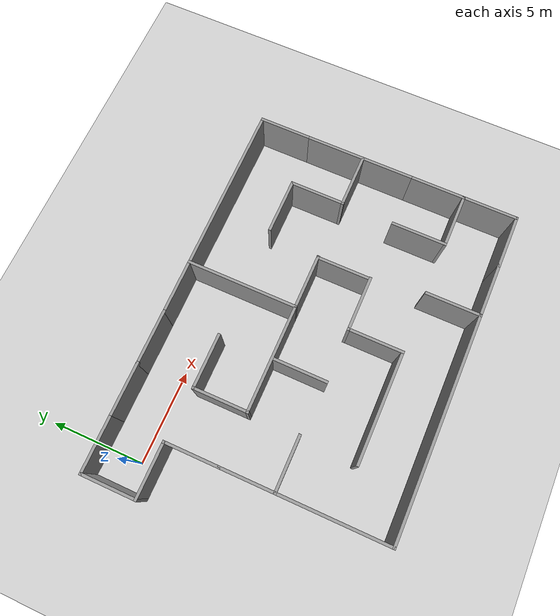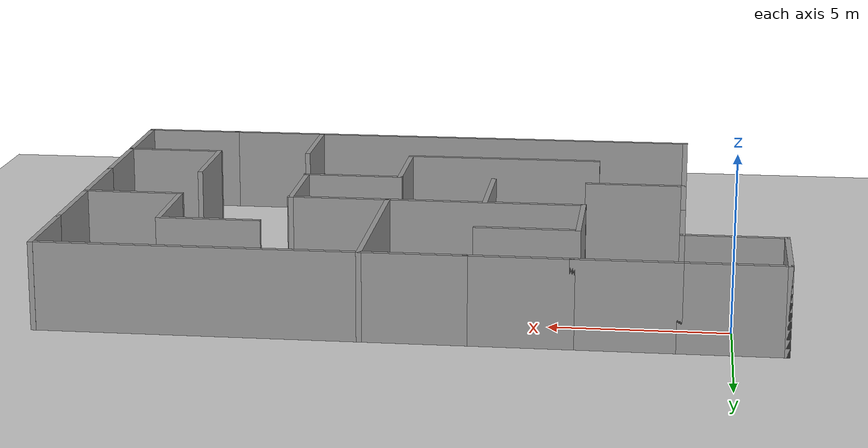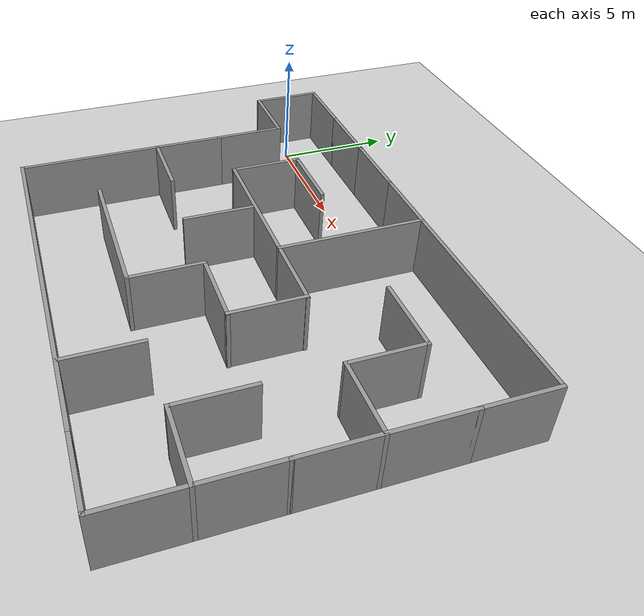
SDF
<sdf version="1.7">
 <world name="default">
  <light name="sun" type="directional">
   <pose>0 0 10 0 -0 0</pose>
   <diffuse>0.8 0.8 0.8 1</diffuse>
   <specular>0.2 0.2 0.2 1</specular>
   <attenuation>
    <range>1000</range>
    <constant>0.9</constant>
    <linear>0.01</linear>
    <quadratic>0.001</quadratic>
   </attenuation>
   <direction>-0.5 0.1 -0.9</direction>
   <spot><inner_angle>0</inner_angle><outer_angle>0</outer_angle><falloff>0</falloff></spot>
  </light>
  <model name="ground_plane">
   <static>1</static>
   <link name="link">
    <collision name="collision">
     <geometry><plane><normal>0 0 1</normal><size>100 100</size></plane></geometry>
     <surface>
      <contact><collide_bitmask>65535</collide_bitmask></contact>
      <friction><ode><mu>100</mu><mu2>50</mu2></ode></friction>
     </surface>
    </collision>
    <visual name="visual">
     <cast_shadows>0</cast_shadows>
     <geometry><plane><normal>0 0 1</normal><size>100 100</size></plane></geometry>
     <material>
      <script><uri>file://media/materials/scripts/gazebo.material</uri><name>Gazebo/Grey</name></script>
     </material>
    </visual>
   </link>
  </model>
  <gravity>0 0 -9.8</gravity>
  <magnetic_field>6e-06 2.3e-05 -4.2e-05</magnetic_field>
  <atmosphere type="adiabatic"/>
  <physics type="ode">
   <max_step_size>0.001</max_step_size>
   <real_time_factor>1</real_time_factor>
   <real_time_update_rate>1000</real_time_update_rate>
  </physics>
  <scene><ambient>0.4 0.4 0.4 1</ambient><background>0.7 0.7 0.7 1</background><shadows>1</shadows></scene>
  <spherical_coordinates>
   <surface_model>EARTH_WGS84</surface_model>
   <latitude_deg>0</latitude_deg>
   <longitude_deg>0</longitude_deg>
   <elevation>0</elevation>
   <heading_deg>0</heading_deg>
  </spherical_coordinates>
  <model name="Untitled">
   <pose>8.76 -5.31853 0 0 -0 0</pose>
   <link name="Wall_0">
    <collision name="Wall_0_Collision">
     <geometry><box><size>3 0.15 2.5</size></box></geometry>
     <pose>0 0 1.25 0 -0 0</pose>
    </collision>
    <visual name="Wall_0_Visual">
     <pose>0 0 1.25 0 -0 0</pose>
     <geometry><box><size>3 0.15 2.5</size></box></geometry>
     <material>
      <script><uri>file://media/materials/scripts/gazebo.material</uri><name>Gazebo/Grey</name></script>
      <ambient>1 1 1 1</ambient>
     </material>
     <meta><layer>0</layer></meta>
    </visual>
    <pose>-8.775 4.34853 0 0 -0 3.14159</pose>
   </link>
   <link name="Wall_101">
    <collision name="Wall_101_Collision">
     <geometry><box><size>2.96482 0.15 2.5</size></box></geometry>
     <pose>0 0 1.25 0 -0 0</pose>
    </collision>
    <visual name="Wall_101_Visual">
     <pose>0 0 1.25 0 -0 0</pose>
     <geometry><box><size>2.96482 0.15 2.5</size></box></geometry>
     <material>
      <script><uri>file://media/materials/scripts/gazebo.material</uri><name>Gazebo/Grey</name></script>
      <ambient>1 1 1 1</ambient>
     </material>
     <meta><layer>0</layer></meta>
    </visual>
    <pose>10.2 -2.90889 0 0 -0 -1.5708</pose>
   </link>
   <link name="Wall_105">
    <collision name="Wall_105_Collision">
     <geometry><box><size>3.18354 0.15 2.5</size></box></geometry>
     <pose>0 0 1.25 0 -0 0</pose>
    </collision>
    <visual name="Wall_105_Visual">
     <pose>0 0 1.25 0 -0 0</pose>
     <geometry><box><size>3.18354 0.15 2.5</size></box></geometry>
     <material>
      <script><uri>file://media/materials/scripts/gazebo.material</uri><name>Gazebo/Grey</name></script>
      <ambient>1 1 1 1</ambient>
     </material>
     <meta><layer>0</layer></meta>
    </visual>
    <pose>10.2 2.8653 0 0 -0 -1.5708</pose>
   </link>
   <link name="Wall_107">
    <collision name="Wall_107_Collision">
     <geometry><box><size>3 0.15 2.5</size></box></geometry>
     <pose>0 0 1.25 0 -0 0</pose>
    </collision>
    <visual name="Wall_107_Visual">
     <pose>0 0 1.25 0 -0 0</pose>
     <geometry><box><size>3 0.15 2.5</size></box></geometry>
     <material>
      <script><uri>file://media/materials/scripts/gazebo.material</uri><name>Gazebo/Grey</name></script>
      <ambient>1 1 1 1</ambient>
     </material>
     <meta><layer>0</layer></meta>
    </visual>
    <pose>10.2 5.77648 0 0 -0 1.5708</pose>
   </link>
   <link name="Wall_11">
    <collision name="Wall_11_Collision">
     <geometry><box><size>3 0.15 2.5</size></box></geometry>
     <pose>0 0 1.25 0 -0 0</pose>
    </collision>
    <visual name="Wall_11_Visual">
     <pose>0 0 1.25 0 -0 0</pose>
     <geometry><box><size>3 0.15 2.5</size></box></geometry>
     <material>
      <script><uri>file://media/materials/scripts/gazebo.material</uri><name>Gazebo/Grey</name></script>
      <ambient>1 1 1 1</ambient>
     </material>
     <meta><layer>0</layer></meta>
    </visual>
    <pose>-4.5 2.77352 0 0 -0 1.5708</pose>
   </link>
   <link name="Wall_12">
    <collision name="Wall_12_Collision">
     <geometry><box><size>3 0.15 2.5</size></box></geometry>
     <pose>0 0 1.25 0 -0 0</pose>
    </collision>
    <visual name="Wall_12_Visual">
     <pose>0 0 1.25 0 -0 0</pose>
     <geometry><box><size>3 0.15 2.5</size></box></geometry>
     <material>
      <script><uri>file://media/materials/scripts/gazebo.material</uri><name>Gazebo/Grey</name></script>
      <ambient>1 1 1 1</ambient>
     </material>
     <meta><layer>0</layer></meta>
    </visual>
    <pose>-3.075 4.19853 0 0 -0 0</pose>
   </link>
   <link name="Wall_14">
    <collision name="Wall_14_Collision">
     <geometry><box><size>3 0.15 2.5</size></box></geometry>
     <pose>0 0 1.25 0 -0 0</pose>
    </collision>
    <visual name="Wall_14_Visual">
     <pose>0 0 1.25 0 -0 0</pose>
     <geometry><box><size>3 0.15 2.5</size></box></geometry>
     <material>
      <script><uri>file://media/materials/scripts/gazebo.material</uri><name>Gazebo/Grey</name></script>
      <ambient>1 1 1 1</ambient>
     </material>
     <meta><layer>0</layer></meta>
    </visual>
    <pose>-7.35 2.92353 0 0 -0 -1.5708</pose>
   </link>
   <link name="Wall_17">
    <collision name="Wall_17_Collision">
     <geometry><box><size>5.85 0.15 2.5</size></box></geometry>
     <pose>0 0 1.25 0 -0 0</pose>
    </collision>
    <visual name="Wall_17_Visual">
     <pose>0 0 1.25 0 -0 0</pose>
     <geometry><box><size>5.85 0.15 2.5</size></box></geometry>
     <material>
      <script><uri>file://media/materials/scripts/gazebo.material</uri><name>Gazebo/Grey</name></script>
      <ambient>1 1 1 1</ambient>
     </material>
     <meta><layer>0</layer></meta>
    </visual>
    <pose>-1.65 1.34852 0 0 -0 3.14159</pose>
   </link>
   <link name="Wall_2">
    <collision name="Wall_2_Collision">
     <geometry><box><size>3 0.15 2.5</size></box></geometry>
     <pose>0 0 1.25 0 -0 0</pose>
    </collision>
    <visual name="Wall_2_Visual">
     <pose>0 0 1.25 0 -0 0</pose>
     <geometry><box><size>3 0.15 2.5</size></box></geometry>
     <material>
      <script><uri>file://media/materials/scripts/gazebo.material</uri><name>Gazebo/Grey</name></script>
      <ambient>1 1 1 1</ambient>
     </material>
     <meta><layer>0</layer></meta>
    </visual>
    <pose>-10.2 5.77353 0 0 -0 1.5708</pose>
   </link>
   <link name="Wall_28">
    <collision name="Wall_28_Collision">
     <geometry><box><size>3.0123 0.15 2.5</size></box></geometry>
     <pose>0 0 1.25 0 -0 0</pose>
    </collision>
    <visual name="Wall_28_Visual">
     <pose>0 0 1.25 0 -0 0</pose>
     <geometry><box><size>3.0123 0.15 2.5</size></box></geometry>
     <material>
      <script><uri>file://media/materials/scripts/gazebo.material</uri><name>Gazebo/Grey</name></script>
      <ambient>1 1 1 1</ambient>
     </material>
     <meta><layer>0</layer></meta>
    </visual>
    <pose>-1.64666 -0.096928 0 0 -0 -1.57313</pose>
   </link>
   <link name="Wall_3">
    <collision name="Wall_3_Collision">
     <geometry><box><size>3 0.15 2.5</size></box></geometry>
     <pose>0 0 1.25 0 -0 0</pose>
    </collision>
    <visual name="Wall_3_Visual">
     <pose>0 0 1.25 0 -0 0</pose>
     <geometry><box><size>3 0.15 2.5</size></box></geometry>
     <material>
      <script><uri>file://media/materials/scripts/gazebo.material</uri><name>Gazebo/Grey</name></script>
      <ambient>1 1 1 1</ambient>
     </material>
     <meta><layer>0</layer></meta>
    </visual>
    <pose>-8.775 7.19853 0 0 -0 0</pose>
   </link>
   <link name="Wall_30">
    <collision name="Wall_30_Collision">
     <geometry><box><size>3 0.15 2.5</size></box></geometry>
     <pose>0 0 1.25 0 -0 0</pose>
    </collision>
    <visual name="Wall_30_Visual">
     <pose>0 0 1.25 0 -0 0</pose>
     <geometry><box><size>3 0.15 2.5</size></box></geometry>
     <material>
      <script><uri>file://media/materials/scripts/gazebo.material</uri><name>Gazebo/Grey</name></script>
      <ambient>1 1 1 1</ambient>
     </material>
     <meta><layer>0</layer></meta>
    </visual>
    <pose>-7.35 0.073525 0 0 -0 -1.5708</pose>
   </link>
   <link name="Wall_32">
    <collision name="Wall_32_Collision">
     <geometry><box><size>3 0.15 2.5</size></box></geometry>
     <pose>0 0 1.25 0 -0 0</pose>
    </collision>
    <visual name="Wall_32_Visual">
     <pose>0 0 1.25 0 -0 0</pose>
     <geometry><box><size>3 0.15 2.5</size></box></geometry>
     <material>
      <script><uri>file://media/materials/scripts/gazebo.material</uri><name>Gazebo/Grey</name></script>
      <ambient>1 1 1 1</ambient>
     </material>
     <meta><layer>0</layer></meta>
    </visual>
    <pose>2.6516 1.34852 0 0 -0 0</pose>
   </link>
   <link name="Wall_33">
    <collision name="Wall_33_Collision">
     <geometry><box><size>3.0005 0.15 2.5</size></box></geometry>
     <pose>0 0 1.25 0 -0 0</pose>
    </collision>
    <visual name="Wall_33_Visual">
     <pose>0 0 1.25 0 -0 0</pose>
     <geometry><box><size>3.0005 0.15 2.5</size></box></geometry>
     <material>
      <script><uri>file://media/materials/scripts/gazebo.material</uri><name>Gazebo/Grey</name></script>
      <ambient>1 1 1 1</ambient>
     </material>
     <meta><layer>0</layer></meta>
    </visual>
    <pose>4.05 -0.076475 0 0 -0 -1.5708</pose>
   </link>
   <link name="Wall_34">
    <collision name="Wall_34_Collision">
     <geometry><box><size>3.0266 0.15 2.5</size></box></geometry>
     <pose>0 0 1.25 0 -0 0</pose>
    </collision>
    <visual name="Wall_34_Visual">
     <pose>0 0 1.25 0 -0 0</pose>
     <geometry><box><size>3.0266 0.15 2.5</size></box></geometry>
     <material>
      <script><uri>file://media/materials/scripts/gazebo.material</uri><name>Gazebo/Grey</name></script>
      <ambient>1 1 1 1</ambient>
     </material>
     <meta><layer>0</layer></meta>
    </visual>
    <pose>2.6383 -1.50147 0 0 -0 3.14159</pose>
   </link>
   <link name="Wall_35">
    <collision name="Wall_35_Collision">
     <geometry><box><size>3 0.15 2.5</size></box></geometry>
     <pose>0 0 1.25 0 -0 0</pose>
    </collision>
    <visual name="Wall_35_Visual">
     <pose>0 0 1.25 0 -0 0</pose>
     <geometry><box><size>3 0.15 2.5</size></box></geometry>
     <material>
      <script><uri>file://media/materials/scripts/gazebo.material</uri><name>Gazebo/Grey</name></script>
      <ambient>1 1 1 1</ambient>
     </material>
     <meta><layer>0</layer></meta>
    </visual>
    <pose>1.2 -2.92647 0 0 -0 -1.5708</pose>
   </link>
   <link name="Wall_36">
    <collision name="Wall_36_Collision">
     <geometry><box><size>6 0.15 2.5</size></box></geometry>
     <pose>0 0 1.25 0 -0 0</pose>
    </collision>
    <visual name="Wall_36_Visual">
     <pose>0 0 1.25 0 -0 0</pose>
     <geometry><box><size>6 0.15 2.5</size></box></geometry>
     <material>
      <script><uri>file://media/materials/scripts/gazebo.material</uri><name>Gazebo/Grey</name></script>
      <ambient>1 1 1 1</ambient>
     </material>
     <meta><layer>0</layer></meta>
    </visual>
    <pose>-1.725 -4.35147 0 0 -0 3.14159</pose>
   </link>
   <link name="Wall_38">
    <collision name="Wall_38_Collision">
     <geometry><box><size>3 0.15 2.5</size></box></geometry>
     <pose>0 0 1.25 0 -0 0</pose>
    </collision>
    <visual name="Wall_38_Visual">
     <pose>0 0 1.25 0 -0 0</pose>
     <geometry><box><size>3 0.15 2.5</size></box></geometry>
     <material>
      <script><uri>file://media/materials/scripts/gazebo.material</uri><name>Gazebo/Grey</name></script>
      <ambient>1 1 1 1</ambient>
     </material>
     <meta><layer>0</layer></meta>
    </visual>
    <pose>-5.925 -1.35147 0 0 -0 0</pose>
   </link>
   <link name="Wall_4">
    <collision name="Wall_4_Collision">
     <geometry><box><size>3 0.15 2.5</size></box></geometry>
     <pose>0 0 1.25 0 -0 0</pose>
    </collision>
    <visual name="Wall_4_Visual">
     <pose>0 0 1.25 0 -0 0</pose>
     <geometry><box><size>3 0.15 2.5</size></box></geometry>
     <material>
      <script><uri>file://media/materials/scripts/gazebo.material</uri><name>Gazebo/Grey</name></script>
      <ambient>1 1 1 1</ambient>
     </material>
     <meta><layer>0</layer></meta>
    </visual>
    <pose>-5.925 7.19853 0 0 -0 0</pose>
   </link>
   <link name="Wall_5">
    <collision name="Wall_5_Collision">
     <geometry><box><size>3 0.15 2.5</size></box></geometry>
     <pose>0 0 1.25 0 -0 0</pose>
    </collision>
    <visual name="Wall_5_Visual">
     <pose>0 0 1.25 0 -0 0</pose>
     <geometry><box><size>3 0.15 2.5</size></box></geometry>
     <material>
      <script><uri>file://media/materials/scripts/gazebo.material</uri><name>Gazebo/Grey</name></script>
      <ambient>1 1 1 1</ambient>
     </material>
     <meta><layer>0</layer></meta>
    </visual>
    <pose>-3.075 7.19853 0 0 -0 0</pose>
   </link>
   <link name="Wall_63">
    <collision name="Wall_63_Collision">
     <geometry><box><size>6 0.15 2.5</size></box></geometry>
     <pose>0 0 1.25 0 -0 0</pose>
    </collision>
    <visual name="Wall_63_Visual">
     <pose>0 0 1.25 0 -0 0</pose>
     <geometry><box><size>6 0.15 2.5</size></box></geometry>
     <material>
      <script><uri>file://media/materials/scripts/gazebo.material</uri><name>Gazebo/Grey</name></script>
      <ambient>1 1 1 1</ambient>
     </material>
     <meta><layer>0</layer></meta>
    </visual>
    <pose>-7.35 -4.27647 0 0 -0 -1.5708</pose>
   </link>
   <link name="Wall_68">
    <collision name="Wall_68_Collision">
     <geometry><box><size>12 0.15 2.5</size></box></geometry>
     <pose>0 0 1.25 0 -0 0</pose>
    </collision>
    <visual name="Wall_68_Visual">
     <pose>0 0 1.25 0 -0 0</pose>
     <geometry><box><size>12 0.15 2.5</size></box></geometry>
     <material>
      <script><uri>file://media/materials/scripts/gazebo.material</uri><name>Gazebo/Grey</name></script>
      <ambient>1 1 1 1</ambient>
     </material>
     <meta><layer>0</layer></meta>
    </visual>
    <pose>-1.425 -7.20148 0 0 -0 0</pose>
   </link>
   <link name="Wall_69">
    <collision name="Wall_69_Collision">
     <geometry><box><size>3 0.15 2.5</size></box></geometry>
     <pose>0 0 1.25 0 -0 0</pose>
    </collision>
    <visual name="Wall_69_Visual">
     <pose>0 0 1.25 0 -0 0</pose>
     <geometry><box><size>3 0.15 2.5</size></box></geometry>
     <material>
      <script><uri>file://media/materials/scripts/gazebo.material</uri><name>Gazebo/Grey</name></script>
      <ambient>1 1 1 1</ambient>
     </material>
     <meta><layer>0</layer></meta>
    </visual>
    <pose>4.5 -5.77647 0 0 -0 1.5708</pose>
   </link>
   <link name="Wall_7">
    <collision name="Wall_7_Collision">
     <geometry><box><size>3 0.15 2.5</size></box></geometry>
     <pose>0 0 1.25 0 -0 0</pose>
    </collision>
    <visual name="Wall_7_Visual">
     <pose>0 0 1.25 0 -0 0</pose>
     <geometry><box><size>3 0.15 2.5</size></box></geometry>
     <material>
      <script><uri>file://media/materials/scripts/gazebo.material</uri><name>Gazebo/Grey</name></script>
      <ambient>1 1 1 1</ambient>
     </material>
     <meta><layer>0</layer></meta>
    </visual>
    <pose>-0.225 7.19853 0 0 -0 0</pose>
   </link>
   <link name="Wall_73">
    <collision name="Wall_73_Collision">
     <geometry><box><size>3 0.15 2.5</size></box></geometry>
     <pose>0 0 1.25 0 -0 0</pose>
    </collision>
    <visual name="Wall_73_Visual">
     <pose>0 0 1.25 0 -0 0</pose>
     <geometry><box><size>3 0.15 2.5</size></box></geometry>
     <material>
      <script><uri>file://media/materials/scripts/gazebo.material</uri><name>Gazebo/Grey</name></script>
      <ambient>1 1 1 1</ambient>
     </material>
     <meta><layer>0</layer></meta>
    </visual>
    <pose>5.925 -7.20148 0 0 -0 0</pose>
   </link>
   <link name="Wall_74">
    <collision name="Wall_74_Collision">
     <geometry><box><size>3 0.15 2.5</size></box></geometry>
     <pose>0 0 1.25 0 -0 0</pose>
    </collision>
    <visual name="Wall_74_Visual">
     <pose>0 0 1.25 0 -0 0</pose>
     <geometry><box><size>3 0.15 2.5</size></box></geometry>
     <material>
      <script><uri>file://media/materials/scripts/gazebo.material</uri><name>Gazebo/Grey</name></script>
      <ambient>1 1 1 1</ambient>
     </material>
     <meta><layer>0</layer></meta>
    </visual>
    <pose>8.775 -7.20148 0 0 -0 0</pose>
   </link>
   <link name="Wall_75">
    <collision name="Wall_75_Collision">
     <geometry><box><size>3.03518 0.15 2.5</size></box></geometry>
     <pose>0 0 1.25 0 -0 0</pose>
    </collision>
    <visual name="Wall_75_Visual">
     <pose>0 0 1.25 0 -0 0</pose>
     <geometry><box><size>3.03518 0.15 2.5</size></box></geometry>
     <material>
      <script><uri>file://media/materials/scripts/gazebo.material</uri><name>Gazebo/Grey</name></script>
      <ambient>1 1 1 1</ambient>
     </material>
     <meta><layer>0</layer></meta>
    </visual>
    <pose>10.2 -5.75889 0 0 -0 1.5708</pose>
   </link>
   <link name="Wall_8">
    <collision name="Wall_8_Collision">
     <geometry><box><size>6.00024 0.15 2.5</size></box></geometry>
     <pose>0 0 1.25 0 -0 0</pose>
    </collision>
    <visual name="Wall_8_Visual">
     <pose>0 0 1.25 0 -0 0</pose>
     <geometry><box><size>6.00024 0.15 2.5</size></box></geometry>
     <material>
      <script><uri>file://media/materials/scripts/gazebo.material</uri><name>Gazebo/Grey</name></script>
      <ambient>1 1 1 1</ambient>
     </material>
     <meta><layer>0</layer></meta>
    </visual>
    <pose>1.2 4.27353 0 0 -0 -1.5708</pose>
   </link>
   <link name="Wall_82">
    <collision name="Wall_82_Collision">
     <geometry><box><size>3 0.15 2.5</size></box></geometry>
     <pose>0 0 1.25 0 -0 0</pose>
    </collision>
    <visual name="Wall_82_Visual">
     <pose>0 0 1.25 0 -0 0</pose>
     <geometry><box><size>3 0.15 2.5</size></box></geometry>
     <material>
      <script><uri>file://media/materials/scripts/gazebo.material</uri><name>Gazebo/Grey</name></script>
      <ambient>1 1 1 1</ambient>
     </material>
     <meta><layer>0</layer></meta>
    </visual>
    <pose>10.2 -0.076475 0 0 -0 1.5708</pose>
   </link>
   <link name="Wall_83">
    <collision name="Wall_83_Collision">
     <geometry><box><size>3 0.15 2.5</size></box></geometry>
     <pose>0 0 1.25 0 -0 0</pose>
    </collision>
    <visual name="Wall_83_Visual">
     <pose>0 0 1.25 0 -0 0</pose>
     <geometry><box><size>3 0.15 2.5</size></box></geometry>
     <material>
      <script><uri>file://media/materials/scripts/gazebo.material</uri><name>Gazebo/Grey</name></script>
      <ambient>1 1 1 1</ambient>
     </material>
     <meta><layer>0</layer></meta>
    </visual>
    <pose>8.775 1.34852 0 0 -0 3.14159</pose>
   </link>
   <link name="Wall_84">
    <collision name="Wall_84_Collision">
     <geometry><box><size>3 0.15 2.5</size></box></geometry>
     <pose>0 0 1.25 0 -0 0</pose>
    </collision>
    <visual name="Wall_84_Visual">
     <pose>0 0 1.25 0 -0 0</pose>
     <geometry><box><size>3 0.15 2.5</size></box></geometry>
     <material>
      <script><uri>file://media/materials/scripts/gazebo.material</uri><name>Gazebo/Grey</name></script>
      <ambient>1 1 1 1</ambient>
     </material>
     <meta><layer>0</layer></meta>
    </visual>
    <pose>7.35 2.77352 0 0 -0 1.5708</pose>
   </link>
   <link name="Wall_85">
    <collision name="Wall_85_Collision">
     <geometry><box><size>3 0.15 2.5</size></box></geometry>
     <pose>0 0 1.25 0 -0 0</pose>
    </collision>
    <visual name="Wall_85_Visual">
     <pose>0 0 1.25 0 -0 0</pose>
     <geometry><box><size>3 0.15 2.5</size></box></geometry>
     <material>
      <script><uri>file://media/materials/scripts/gazebo.material</uri><name>Gazebo/Grey</name></script>
      <ambient>1 1 1 1</ambient>
     </material>
     <meta><layer>0</layer></meta>
    </visual>
    <pose>5.925 4.19853 0 0 -0 3.14159</pose>
   </link>
   <link name="Wall_87">
    <collision name="Wall_87_Collision">
     <geometry><box><size>9 0.15 2.5</size></box></geometry>
     <pose>0 0 1.25 0 -0 0</pose>
    </collision>
    <visual name="Wall_87_Visual">
     <pose>0 0 1.25 0 -0 0</pose>
     <geometry><box><size>9 0.15 2.5</size></box></geometry>
     <material>
      <script><uri>file://media/materials/scripts/gazebo.material</uri><name>Gazebo/Grey</name></script>
      <ambient>1 1 1 1</ambient>
     </material>
     <meta><layer>0</layer></meta>
    </visual>
    <pose>5.625 7.19853 0 0 -0 0</pose>
   </link>
   <link name="Wall_98">
    <collision name="Wall_98_Collision">
     <geometry><box><size>3 0.15 2.5</size></box></geometry>
     <pose>0 0 1.25 0 -0 0</pose>
    </collision>
    <visual name="Wall_98_Visual">
     <pose>0 0 1.25 0 -0 0</pose>
     <geometry><box><size>3 0.15 2.5</size></box></geometry>
     <material>
      <script><uri>file://media/materials/scripts/gazebo.material</uri><name>Gazebo/Grey</name></script>
      <ambient>1 1 1 1</ambient>
     </material>
     <meta><layer>0</layer></meta>
    </visual>
    <pose>8.775 -4.3163 0 0 -0 3.14159</pose>
   </link>
   <link name="Wall_99">
    <collision name="Wall_99_Collision">
     <geometry><box><size>3 0.15 2.5</size></box></geometry>
     <pose>0 0 1.25 0 -0 0</pose>
    </collision>
    <visual name="Wall_99_Visual">
     <pose>0 0 1.25 0 -0 0</pose>
     <geometry><box><size>3 0.15 2.5</size></box></geometry>
     <material>
      <script><uri>file://media/materials/scripts/gazebo.material</uri><name>Gazebo/Grey</name></script>
      <ambient>1 1 1 1</ambient>
     </material>
     <meta><layer>0</layer></meta>
    </visual>
    <pose>7.35 -2.8913 0 0 -0 1.5708</pose>
   </link>
   <static>1</static>
  </model>
 </world>
</sdf>
